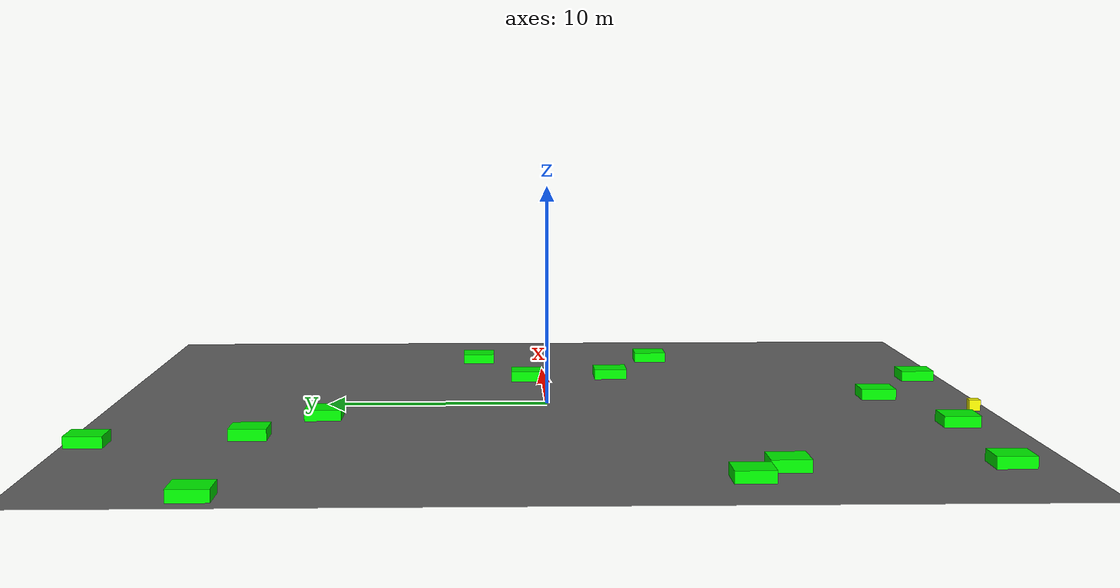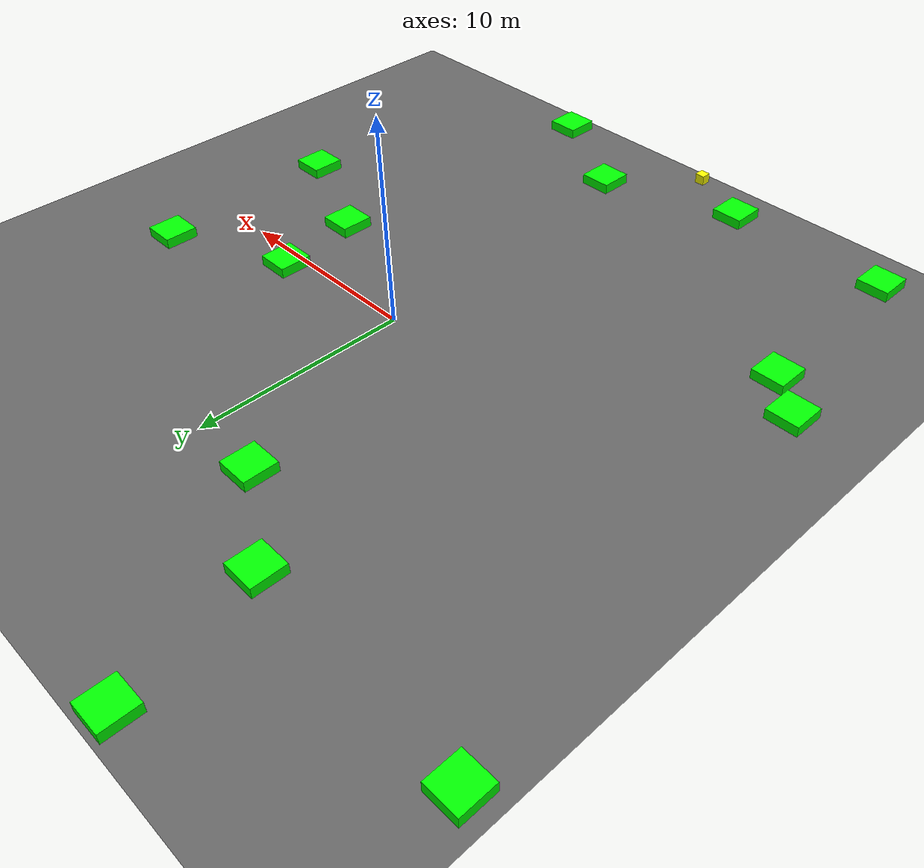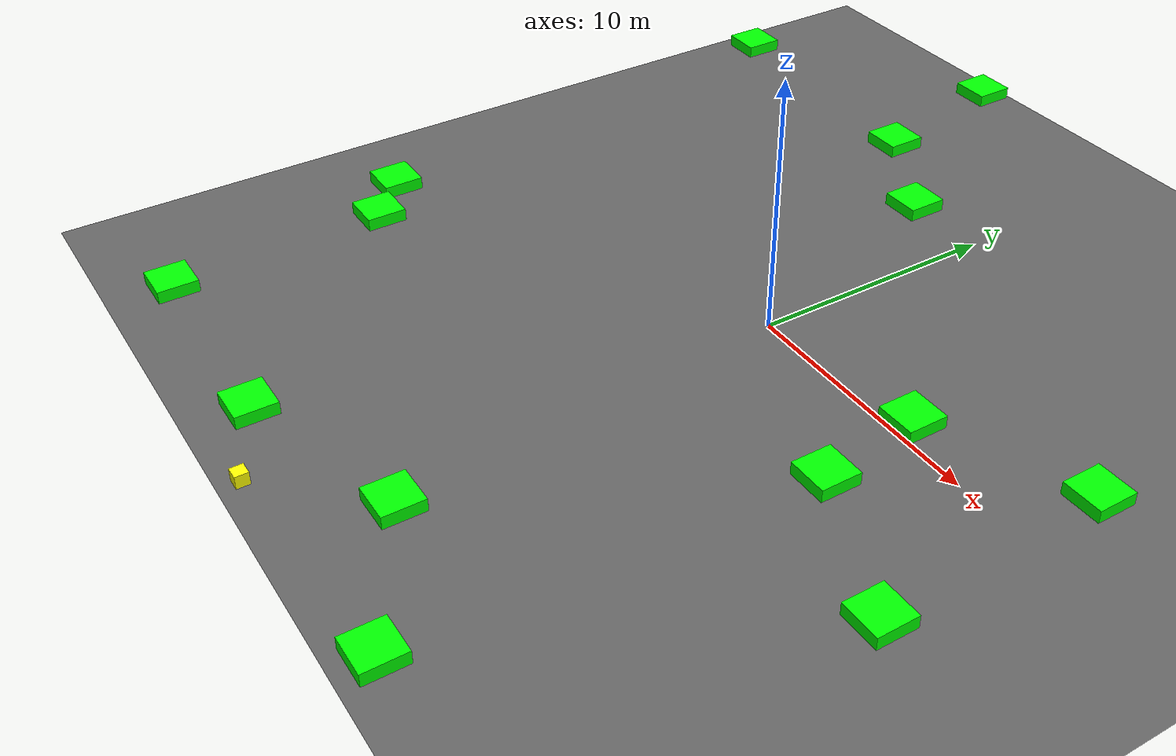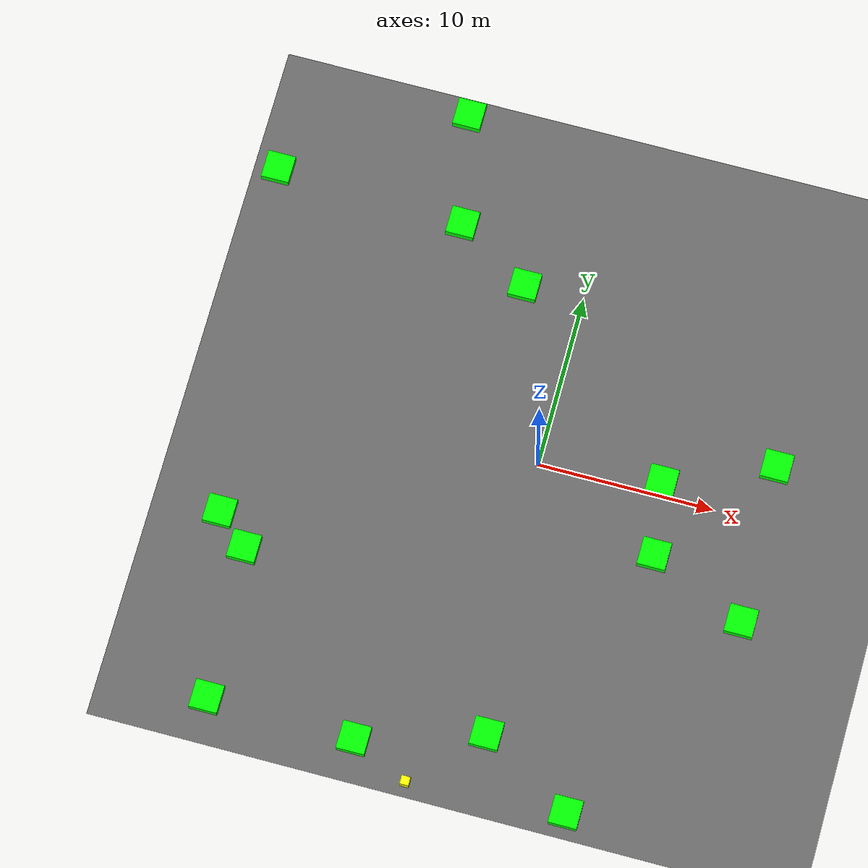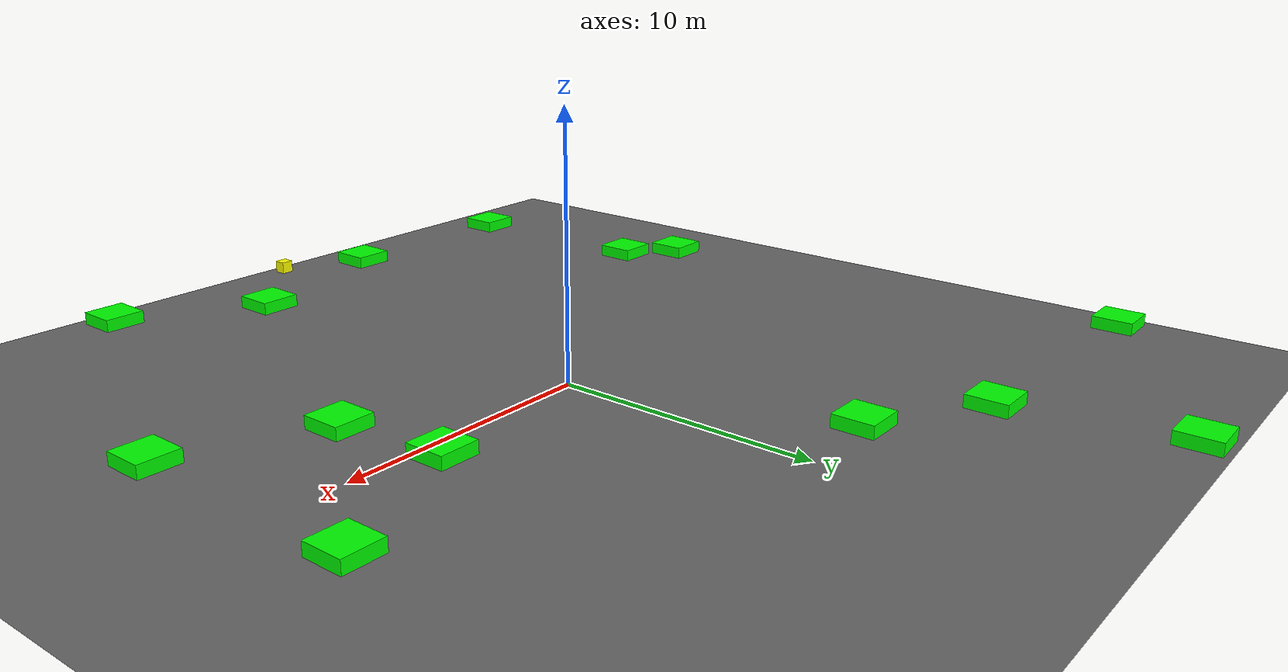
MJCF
<mujoco model="baseline_lvl5_obs14_seed4009">
    <compiler angle="degree" coordinate="local" inertiafromgeom="true"/>
    <option integrator="RK4" timestep="0.01"/>

    <asset>
        <texture builtin="gradient" height="100" rgb1="0.6 0.8 1" rgb2="0 0 0" type="skybox" width="100"/>
        <texture name="floor_texture" type="2d" builtin="checker" width="100" height="100" rgb1="0 0 0" rgb2="0.8 0.8 0.8"/>
        <material name="MatPlane" reflectance="0.5" shininess="1" specular="1" texrepeat="10 10" texture="floor_texture"/>
    </asset>

    <!-- Excluding the contact between the agent and the goal, and the agent and the floor -->
    <contact>
        <exclude body1="agent" body2="goal"/>
        <exclude body1 = "agent" body2 = "floor"/>
    </contact>

    <extension>
        <plugin plugin = "mujoco.pid">
            <instance name = "pid1">
                <config key="kp" value="2"/>
                <config key="ki" value="0"/>
                <config key="kd" value="55"/>
            </instance>
        </plugin>
    </extension>

    <worldbody>
        <light cutoff="100" diffuse="1 1 1" dir="-0 0 -1.3" directional="true" exponent="1" pos="0 0 1.3" specular=".1 .1 .1"/>
        <body name="floor" pos="0 0 0">
            <geom name="floor_geom" type="plane" size="20 20 0.1" material="MatPlane"/>
        </body>

        <!-- Goal -->
        <body name="goal" pos="12.000 -12.000 0">
            <geom name="goal_geom" type="plane" size="0.5 0.5 1" pos="0 0 0" rgba="1 0 0 1"/>
        </body>

        <!-- Agent -->
        <body name="agent" pos="-2.279 -19.197 0.25">
            <joint name="j1" type="slide" axis ="1 0 0 "/>
            <joint name="j2" type="slide" axis ="0 1 0 "/>
            <geom name="agent_geom" type="box" size="0.25 0.25 0.250" rgba="1 1 0 1"/>
        </body>

    <body name="obstacle1" pos="-7.707 12.572 0.250">
      <geom name="obstacle1_geom" type="box"
            size="0.800 0.800 0.250"
            rgba="0 1 0 1"/>
    </body>
    <body name="obstacle2" pos="12.775 3.279 0.250">
      <geom name="obstacle2_geom" type="box"
            size="0.800 0.800 0.250"
            rgba="0 1 0 1"/>
    </body>
    <body name="obstacle3" pos="-9.056 18.970 0.250">
      <geom name="obstacle3_geom" type="box"
            size="0.800 0.800 0.250"
            rgba="0 1 0 1"/>
    </body>
    <body name="obstacle4" pos="-5.593 -17.622 0.250">
      <geom name="obstacle4_geom" type="box"
            size="0.800 0.800 0.250"
            rgba="0 1 0 1"/>
    </body>
    <body name="obstacle5" pos="13.030 -5.815 0.250">
      <geom name="obstacle5_geom" type="box"
            size="0.800 0.800 0.250"
            rgba="0 1 0 1"/>
    </body>
    <body name="obstacle6" pos="-14.309 -8.800 0.250">
      <geom name="obstacle6_geom" type="box"
            size="0.800 0.800 0.250"
            rgba="0 1 0 1"/>
    </body>
    <body name="obstacle7" pos="1.274 -15.512 0.250">
      <geom name="obstacle7_geom" type="box"
            size="0.800 0.800 0.250"
            rgba="0 1 0 1"/>
    </body>
    <body name="obstacle8" pos="-3.394 9.907 0.250">
      <geom name="obstacle8_geom" type="box"
            size="0.800 0.800 0.250"
            rgba="0 1 0 1"/>
    </body>
    <body name="obstacle9" pos="-18.606 13.076 0.250">
      <geom name="obstacle9_geom" type="box"
            size="0.800 0.800 0.250"
            rgba="0 1 0 1"/>
    </body>
    <body name="obstacle10" pos="-13.919 -17.479 0.250">
      <geom name="obstacle10_geom" type="box"
            size="0.800 0.800 0.250"
            rgba="0 1 0 1"/>
    </body>
    <body name="obstacle11" pos="6.870 0.802 0.250">
      <geom name="obstacle11_geom" type="box"
            size="0.800 0.800 0.250"
            rgba="0 1 0 1"/>
    </body>
    <body name="obstacle12" pos="-16.163 -7.174 0.250">
      <geom name="obstacle12_geom" type="box"
            size="0.800 0.800 0.250"
            rgba="0 1 0 1"/>
    </body>
    <body name="obstacle13" pos="7.503 -3.367 0.250">
      <geom name="obstacle13_geom" type="box"
            size="0.800 0.800 0.250"
            rgba="0 1 0 1"/>
    </body>
    <body name="obstacle14" pos="6.518 -18.600 0.250">
      <geom name="obstacle14_geom" type="box"
            size="0.800 0.800 0.250"
            rgba="0 1 0 1"/>
    </body>
    </worldbody>

    <actuator>
        <plugin joint="j1" plugin="mujoco.pid" instance="pid1" />
        <plugin joint="j2" plugin="mujoco.pid" instance="pid1"/>
    </actuator>

  <sensor>
    <distance name="dist1" geom1="agent_geom" geom2="obstacle1_geom" cutoff="1.5"/>
    <distance name="dist2" geom1="agent_geom" geom2="obstacle2_geom" cutoff="1.5"/>
    <distance name="dist3" geom1="agent_geom" geom2="obstacle3_geom" cutoff="1.5"/>
    <distance name="dist4" geom1="agent_geom" geom2="obstacle4_geom" cutoff="1.5"/>
    <distance name="dist5" geom1="agent_geom" geom2="obstacle5_geom" cutoff="1.5"/>
    <distance name="dist6" geom1="agent_geom" geom2="obstacle6_geom" cutoff="1.5"/>
    <distance name="dist7" geom1="agent_geom" geom2="obstacle7_geom" cutoff="1.5"/>
    <distance name="dist8" geom1="agent_geom" geom2="obstacle8_geom" cutoff="1.5"/>
    <distance name="dist9" geom1="agent_geom" geom2="obstacle9_geom" cutoff="1.5"/>
    <distance name="dist10" geom1="agent_geom" geom2="obstacle10_geom" cutoff="1.5"/>
    <distance name="dist11" geom1="agent_geom" geom2="obstacle11_geom" cutoff="1.5"/>
    <distance name="dist12" geom1="agent_geom" geom2="obstacle12_geom" cutoff="1.5"/>
    <distance name="dist13" geom1="agent_geom" geom2="obstacle13_geom" cutoff="1.5"/>
    <distance name="dist14" geom1="agent_geom" geom2="obstacle14_geom" cutoff="1.5"/>
  </sensor>
</mujoco>
